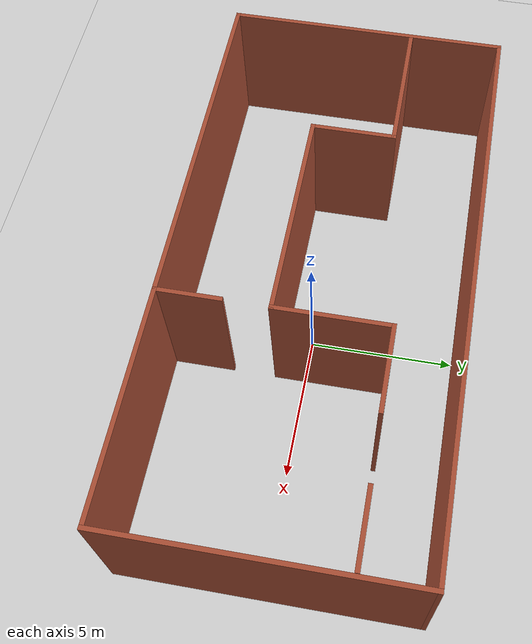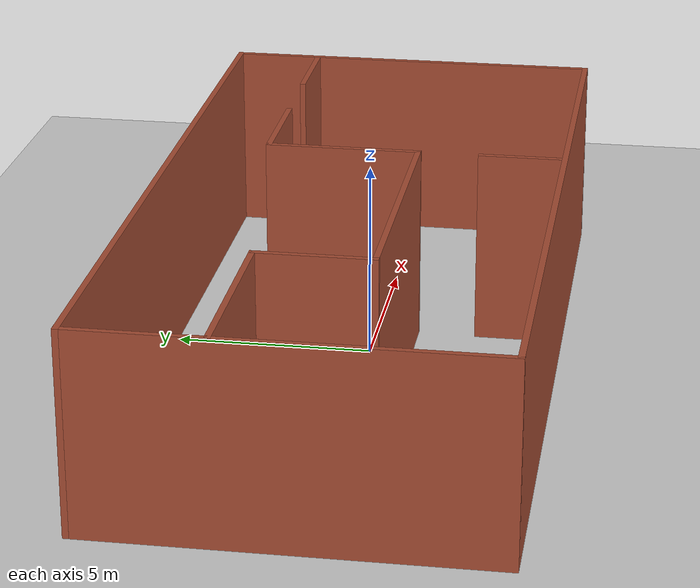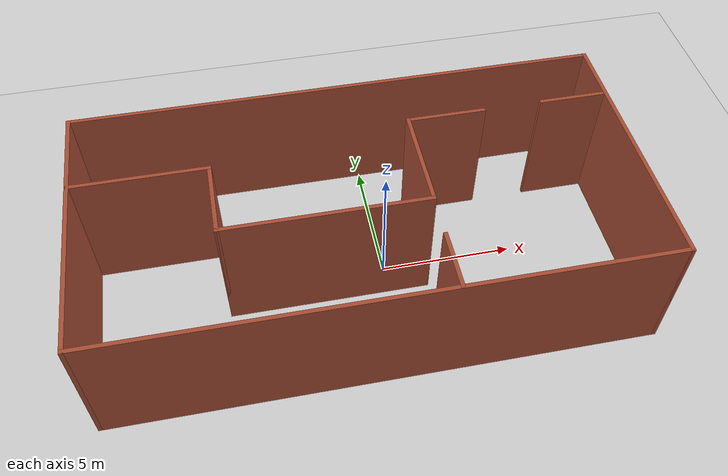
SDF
<sdf version="1.7">
 <world name="default">
  <light name="sun" type="directional">
   <pose>0 0 10 0 -0 0</pose>
   <diffuse>0.8 0.8 0.8 1</diffuse>
   <specular>0.2 0.2 0.2 1</specular>
   <attenuation>
    <range>1000</range>
    <constant>0.9</constant>
    <linear>0.01</linear>
    <quadratic>0.001</quadratic>
   </attenuation>
   <direction>-0.5 0.1 -0.9</direction>
   <spot><inner_angle>0</inner_angle><outer_angle>0</outer_angle><falloff>0</falloff></spot>
  </light>
  <model name="ground_plane">
   <static>1</static>
   <link name="link">
    <collision name="collision">
     <geometry><plane><normal>0 0 1</normal><size>100 100</size></plane></geometry>
     <surface><friction><ode><mu>100</mu><mu2>50</mu2></ode></friction></surface>
    </collision>
    <visual name="visual">
     <cast_shadows>0</cast_shadows>
     <geometry><plane><normal>0 0 1</normal><size>100 100</size></plane></geometry>
     <material>
      <script><uri>file://media/materials/scripts/gazebo.material</uri><name>Gazebo/Grey</name></script>
     </material>
    </visual>
   </link>
  </model>
  <gravity>0 0 -9.8</gravity>
  <magnetic_field>6e-06 2.3e-05 -4.2e-05</magnetic_field>
  <atmosphere type="adiabatic"/>
  <physics type="ode">
   <max_step_size>0.001</max_step_size>
   <real_time_factor>1</real_time_factor>
   <real_time_update_rate>1000</real_time_update_rate>
  </physics>
  <scene><ambient>0.4 0.4 0.4 1</ambient><background>0.7 0.7 0.7 1</background><shadows>1</shadows></scene>
  <audio><device>default</device></audio>
  <spherical_coordinates>
   <surface_model>EARTH_WGS84</surface_model>
   <latitude_deg>0</latitude_deg>
   <longitude_deg>0</longitude_deg>
   <elevation>0</elevation>
   <heading_deg>0</heading_deg>
  </spherical_coordinates>
  <model name="bdrobot_higher_building">
   <pose>-0.855822 0.181652 0 0 -0 0</pose>
   <link name="Wall_11">
    <collision name="Wall_11_Collision">
     <geometry><box><size>20 0.15 5</size></box></geometry>
     <pose>0 0 2.5 0 -0 0</pose>
    </collision>
    <visual name="Wall_11_Visual">
     <pose>0 0 2.5 0 -0 0</pose>
     <geometry><box><size>20 0.15 5</size></box></geometry>
     <material>
      <script><uri>file://media/materials/scripts/gazebo.material</uri><name>Gazebo/Bricks</name></script>
      <ambient>1 1 1 1</ambient>
     </material>
     <meta><layer>0</layer></meta>
    </visual>
    <pose>0 -4.925 0 0 -0 0</pose>
   </link>
   <link name="Wall_12">
    <collision name="Wall_12_Collision">
     <geometry><box><size>10 0.15 5</size></box></geometry>
     <pose>0 0 2.5 0 -0 0</pose>
    </collision>
    <visual name="Wall_12_Visual">
     <pose>0 0 2.5 0 -0 0</pose>
     <geometry><box><size>10 0.15 5</size></box></geometry>
     <material>
      <script><uri>file://media/materials/scripts/gazebo.material</uri><name>Gazebo/Bricks</name></script>
      <ambient>1 1 1 1</ambient>
     </material>
     <meta><layer>0</layer></meta>
    </visual>
    <pose>9.925 -0 0 0 -0 1.5708</pose>
   </link>
   <link name="Wall_13">
    <collision name="Wall_13_Collision">
     <geometry><box><size>20 0.15 5</size></box></geometry>
     <pose>0 0 2.5 0 -0 0</pose>
    </collision>
    <visual name="Wall_13_Visual">
     <pose>0 0 2.5 0 -0 0</pose>
     <geometry><box><size>20 0.15 5</size></box></geometry>
     <material>
      <script><uri>file://media/materials/scripts/gazebo.material</uri><name>Gazebo/Bricks</name></script>
      <ambient>1 1 1 1</ambient>
     </material>
     <meta><layer>0</layer></meta>
    </visual>
    <pose>0 4.925 0 0 -0 3.14159</pose>
   </link>
   <link name="Wall_14">
    <collision name="Wall_14_Collision">
     <geometry><box><size>10 0.15 5</size></box></geometry>
     <pose>0 0 2.5 0 -0 0</pose>
    </collision>
    <visual name="Wall_14_Visual">
     <pose>0 0 2.5 0 -0 0</pose>
     <geometry><box><size>10 0.15 5</size></box></geometry>
     <material>
      <script><uri>file://media/materials/scripts/gazebo.material</uri><name>Gazebo/Bricks</name></script>
      <ambient>1 1 1 1</ambient>
     </material>
     <meta><layer>0</layer></meta>
    </visual>
    <pose>-9.925 -0 0 0 -0 -1.5708</pose>
   </link>
   <link name="Wall_16">
    <collision name="Wall_16_Collision">
     <geometry><box><size>5 0.15 5</size></box></geometry>
     <pose>0 0 2.5 0 -0 0</pose>
    </collision>
    <visual name="Wall_16_Visual">
     <pose>0 0 2.5 0 -0 0</pose>
     <geometry><box><size>5 0.15 5</size></box></geometry>
     <material>
      <script><uri>file://media/materials/scripts/gazebo.material</uri><name>Gazebo/Bricks</name></script>
      <ambient>1 1 1 1</ambient>
     </material>
     <meta><layer>0</layer></meta>
    </visual>
    <pose>-7.484 1.661 0 0 -0 0</pose>
   </link>
   <link name="Wall_17">
    <collision name="Wall_17_Collision">
     <geometry><box><size>3 0.15 5</size></box></geometry>
     <pose>0 0 2.5 0 -0 0</pose>
    </collision>
    <visual name="Wall_17_Visual">
     <pose>0 0 2.5 0 -0 0</pose>
     <geometry><box><size>3 0.15 5</size></box></geometry>
     <material>
      <script><uri>file://media/materials/scripts/gazebo.material</uri><name>Gazebo/Bricks</name></script>
      <ambient>1 1 1 1</ambient>
     </material>
     <meta><layer>0</layer></meta>
    </visual>
    <pose>-5.059 0.236 0 0 -0 -1.5708</pose>
   </link>
   <link name="Wall_18">
    <collision name="Wall_18_Collision">
     <geometry><box><size>7.5 0.15 5</size></box></geometry>
     <pose>0 0 2.5 0 -0 0</pose>
    </collision>
    <visual name="Wall_18_Visual">
     <pose>0 0 2.5 0 -0 0</pose>
     <geometry><box><size>7.5 0.15 5</size></box></geometry>
     <material>
      <script><uri>file://media/materials/scripts/gazebo.material</uri><name>Gazebo/Bricks</name></script>
      <ambient>1 1 1 1</ambient>
     </material>
     <meta><layer>0</layer></meta>
    </visual>
    <pose>-1.384 -1.189 0 0 -0 0</pose>
   </link>
   <link name="Wall_19">
    <collision name="Wall_19_Collision">
     <geometry><box><size>4 0.15 5</size></box></geometry>
     <pose>0 0 2.5 0 -0 0</pose>
    </collision>
    <visual name="Wall_19_Visual">
     <pose>0 0 2.5 0 -0 0</pose>
     <geometry><box><size>4 0.15 5</size></box></geometry>
     <material>
      <script><uri>file://media/materials/scripts/gazebo.material</uri><name>Gazebo/Bricks</name></script>
      <ambient>1 1 1 1</ambient>
     </material>
     <meta><layer>0</layer></meta>
    </visual>
    <pose>2.291 0.736 0 0 -0 1.5708</pose>
   </link>
   <link name="Wall_20">
    <collision name="Wall_20_Collision">
     <geometry><box><size>3 0.15 5</size></box></geometry>
     <pose>0 0 2.5 0 -0 0</pose>
    </collision>
    <visual name="Wall_20_Visual">
     <pose>0 0 2.5 0 -0 0</pose>
     <geometry><box><size>3 0.15 5</size></box></geometry>
     <material>
      <script><uri>file://media/materials/scripts/gazebo.material</uri><name>Gazebo/Bricks</name></script>
      <ambient>1 1 1 1</ambient>
     </material>
     <meta><layer>0</layer></meta>
    </visual>
    <pose>3.716 2.661 0 0 -0 0</pose>
   </link>
   <link name="Wall_22">
    <collision name="Wall_22_Collision">
     <geometry><box><size>2.25 0.15 5</size></box></geometry>
     <pose>0 0 2.5 0 -0 0</pose>
    </collision>
    <visual name="Wall_22_Visual">
     <pose>0 0 2.5 0 -0 0</pose>
     <geometry><box><size>2.25 0.15 5</size></box></geometry>
     <material>
      <script><uri>file://media/materials/scripts/gazebo.material</uri><name>Gazebo/Bricks</name></script>
      <ambient>1 1 1 1</ambient>
     </material>
     <meta><layer>0</layer></meta>
    </visual>
    <pose>2.28 -3.853 0 0 -0 -1.5708</pose>
   </link>
   <link name="Wall_24">
    <collision name="Wall_24_Collision">
     <geometry><box><size>2.5 0.15 5</size></box></geometry>
     <pose>0 0 2.5 0 -0 0</pose>
    </collision>
    <visual name="Wall_24_Visual">
     <pose>0 0 2.5 0 -0 0</pose>
     <geometry><box><size>2.5 0.15 5</size></box></geometry>
     <material>
      <script><uri>file://media/materials/scripts/gazebo.material</uri><name>Gazebo/Bricks</name></script>
      <ambient>1 1 1 1</ambient>
     </material>
     <meta><layer>0</layer></meta>
    </visual>
    <pose>8.59 2.679 0 0 -0 0</pose>
   </link>
   <static>1</static>
  </model>
 </world>
</sdf>
